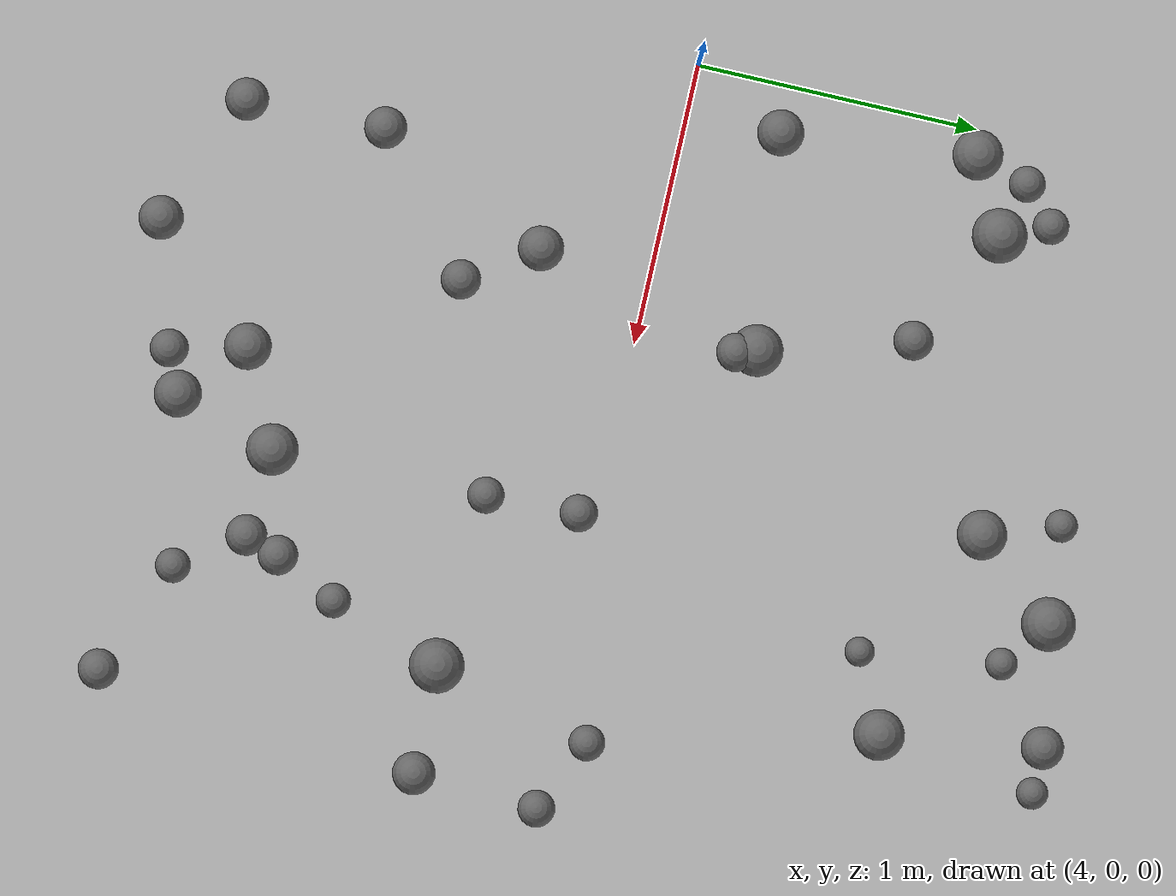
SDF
<sdf version="1.8">
 <world name="extreme_disturbance_parkour">
  <model name="ground_plane">
   <static>true</static>
   <link name="link">
    <collision name="collision">
     <geometry><plane><normal>0 0 1</normal><size>100 100</size></plane></geometry>
     <surface><friction><ode><mu>1.5</mu><mu2>1.5</mu2></ode></friction></surface>
    </collision>
    <visual name="visual">
     <geometry><plane><normal>0 0 1</normal><size>100 100</size></plane></geometry>
     <material><ambient>0.7 0.7 0.7 1</ambient><diffuse>0.7 0.7 0.7 1</diffuse></material>
    </visual>
   </link>
  </model>
  <model name="stone_3">
   <static>true</static>
   <pose>6.1135 -1.3869 0.2254 0.0000 -0.1000 0.0000</pose>
   <link name="link">
    <collision name="collision">
     <geometry><sphere><radius>0.0612</radius></sphere></geometry>
     <surface><friction><ode><mu>100.0</mu><mu2>100.0</mu2></ode></friction></surface>
    </collision>
    <visual name="visual">
     <geometry><sphere><radius>0.0612</radius></sphere></geometry>
     <material><ambient>0.3 0.3 0.3 1</ambient><diffuse>0.4 0.4 0.4 1</diffuse></material>
    </visual>
   </link>
  </model>
  <model name="stone_11">
   <static>true</static>
   <pose>4.4592 -1.0186 0.0421 0.0000 -0.1000 0.0000</pose>
   <link name="link">
    <collision name="collision">
     <geometry><sphere><radius>0.0747</radius></sphere></geometry>
     <surface><friction><ode><mu>100.0</mu><mu2>100.0</mu2></ode></friction></surface>
    </collision>
    <visual name="visual">
     <geometry><sphere><radius>0.0747</radius></sphere></geometry>
     <material><ambient>0.3 0.3 0.3 1</ambient><diffuse>0.4 0.4 0.4 1</diffuse></material>
    </visual>
   </link>
  </model>
  <model name="stone_14">
   <static>true</static>
   <pose>4.1635 0.3348 -0.0073 0.0000 -0.1000 0.0000</pose>
   <link name="link">
    <collision name="collision">
     <geometry><sphere><radius>0.0825</radius></sphere></geometry>
     <surface><friction><ode><mu>100.0</mu><mu2>100.0</mu2></ode></friction></surface>
    </collision>
    <visual name="visual">
     <geometry><sphere><radius>0.0825</radius></sphere></geometry>
     <material><ambient>0.3 0.3 0.3 1</ambient><diffuse>0.4 0.4 0.4 1</diffuse></material>
    </visual>
   </link>
  </model>
  <model name="stone_15">
   <static>true</static>
   <pose>5.6336 1.6227 0.1323 0.0000 -0.1000 0.0000</pose>
   <link name="link">
    <collision name="collision">
     <geometry><sphere><radius>0.0954</radius></sphere></geometry>
     <surface><friction><ode><mu>100.0</mu><mu2>100.0</mu2></ode></friction></surface>
    </collision>
    <visual name="visual">
     <geometry><sphere><radius>0.0954</radius></sphere></geometry>
     <material><ambient>0.3 0.3 0.3 1</ambient><diffuse>0.4 0.4 0.4 1</diffuse></material>
    </visual>
   </link>
  </model>
  <model name="stone_16">
   <static>true</static>
   <pose>5.6341 -0.3858 0.1757 0.0000 -0.1000 0.0000</pose>
   <link name="link">
    <collision name="collision">
     <geometry><sphere><radius>0.0644</radius></sphere></geometry>
     <surface><friction><ode><mu>100.0</mu><mu2>100.0</mu2></ode></friction></surface>
    </collision>
    <visual name="visual">
     <geometry><sphere><radius>0.0644</radius></sphere></geometry>
     <material><ambient>0.3 0.3 0.3 1</ambient><diffuse>0.4 0.4 0.4 1</diffuse></material>
    </visual>
   </link>
  </model>
  <model name="stone_21">
   <static>true</static>
   <pose>6.1080 -0.8187 0.2123 0.0000 -0.1000 0.0000</pose>
   <link name="link">
    <collision name="collision">
     <geometry><sphere><radius>0.0611</radius></sphere></geometry>
     <surface><friction><ode><mu>100.0</mu><mu2>100.0</mu2></ode></friction></surface>
    </collision>
    <visual name="visual">
     <geometry><sphere><radius>0.0611</radius></sphere></geometry>
     <material><ambient>0.3 0.3 0.3 1</ambient><diffuse>0.4 0.4 0.4 1</diffuse></material>
    </visual>
   </link>
  </model>
  <model name="stone_22">
   <static>true</static>
   <pose>5.8039 1.4889 0.1912 0.0000 -0.1000 0.0000</pose>
   <link name="link">
    <collision name="collision">
     <geometry><sphere><radius>0.0564</radius></sphere></geometry>
     <surface><friction><ode><mu>100.0</mu><mu2>100.0</mu2></ode></friction></surface>
    </collision>
    <visual name="visual">
     <geometry><sphere><radius>0.0564</radius></sphere></geometry>
     <material><ambient>0.3 0.3 0.3 1</ambient><diffuse>0.4 0.4 0.4 1</diffuse></material>
    </visual>
   </link>
  </model>
  <model name="stone_39">
   <static>true</static>
   <pose>4.9296 0.4222 0.0654 0.0000 -0.1000 0.0000</pose>
   <link name="link">
    <collision name="collision">
     <geometry><sphere><radius>0.0925</radius></sphere></geometry>
     <surface><friction><ode><mu>100.0</mu><mu2>100.0</mu2></ode></friction></surface>
    </collision>
    <visual name="visual">
     <geometry><sphere><radius>0.0925</radius></sphere></geometry>
     <material><ambient>0.3 0.3 0.3 1</ambient><diffuse>0.4 0.4 0.4 1</diffuse></material>
    </visual>
   </link>
  </model>
  <model name="stone_44">
   <static>true</static>
   <pose>5.8724 0.9992 0.2047 0.0000 -0.1000 0.0000</pose>
   <link name="link">
    <collision name="collision">
     <geometry><sphere><radius>0.0520</radius></sphere></geometry>
     <surface><friction><ode><mu>100.0</mu><mu2>100.0</mu2></ode></friction></surface>
    </collision>
    <visual name="visual">
     <geometry><sphere><radius>0.0520</radius></sphere></geometry>
     <material><ambient>0.3 0.3 0.3 1</ambient><diffuse>0.4 0.4 0.4 1</diffuse></material>
    </visual>
   </link>
  </model>
  <model name="stone_48">
   <static>true</static>
   <pose>5.3144 -1.3119 0.1147 0.0000 -0.1000 0.0000</pose>
   <link name="link">
    <collision name="collision">
     <geometry><sphere><radius>0.0829</radius></sphere></geometry>
     <surface><friction><ode><mu>100.0</mu><mu2>100.0</mu2></ode></friction></surface>
    </collision>
    <visual name="visual">
     <geometry><sphere><radius>0.0829</radius></sphere></geometry>
     <material><ambient>0.3 0.3 0.3 1</ambient><diffuse>0.4 0.4 0.4 1</diffuse></material>
    </visual>
   </link>
  </model>
  <model name="stone_52">
   <static>true</static>
   <pose>5.6225 -0.0572 0.1732 0.0000 -0.1000 0.0000</pose>
   <link name="link">
    <collision name="collision">
     <geometry><sphere><radius>0.0659</radius></sphere></geometry>
     <surface><friction><ode><mu>100.0</mu><mu2>100.0</mu2></ode></friction></surface>
    </collision>
    <visual name="visual">
     <geometry><sphere><radius>0.0659</radius></sphere></geometry>
     <material><ambient>0.3 0.3 0.3 1</ambient><diffuse>0.4 0.4 0.4 1</diffuse></material>
    </visual>
   </link>
  </model>
  <model name="stone_61">
   <static>true</static>
   <pose>6.3909 0.1479 0.2459 0.0000 -0.1000 0.0000</pose>
   <link name="link">
    <collision name="collision">
     <geometry><sphere><radius>0.0630</radius></sphere></geometry>
     <surface><friction><ode><mu>100.0</mu><mu2>100.0</mu2></ode></friction></surface>
    </collision>
    <visual name="visual">
     <geometry><sphere><radius>0.0630</radius></sphere></geometry>
     <material><ambient>0.3 0.3 0.3 1</ambient><diffuse>0.4 0.4 0.4 1</diffuse></material>
    </visual>
   </link>
  </model>
  <model name="stone_63">
   <static>true</static>
   <pose>5.2905 1.5885 0.1482 0.0000 -0.1000 0.0000</pose>
   <link name="link">
    <collision name="collision">
     <geometry><sphere><radius>0.0575</radius></sphere></geometry>
     <surface><friction><ode><mu>100.0</mu><mu2>100.0</mu2></ode></friction></surface>
    </collision>
    <visual name="visual">
     <geometry><sphere><radius>0.0575</radius></sphere></geometry>
     <material><ambient>0.3 0.3 0.3 1</ambient><diffuse>0.4 0.4 0.4 1</diffuse></material>
    </visual>
   </link>
  </model>
  <model name="stone_65">
   <static>true</static>
   <pose>5.6455 -1.1462 0.1496 0.0000 -0.1000 0.0000</pose>
   <link name="link">
    <collision name="collision">
     <geometry><sphere><radius>0.0912</radius></sphere></geometry>
     <surface><friction><ode><mu>100.0</mu><mu2>100.0</mu2></ode></friction></surface>
    </collision>
    <visual name="visual">
     <geometry><sphere><radius>0.0912</radius></sphere></geometry>
     <material><ambient>0.3 0.3 0.3 1</ambient><diffuse>0.4 0.4 0.4 1</diffuse></material>
    </visual>
   </link>
  </model>
  <model name="stone_66">
   <static>true</static>
   <pose>5.9985 -1.0421 0.1912 0.0000 -0.1000 0.0000</pose>
   <link name="link">
    <collision name="collision">
     <geometry><sphere><radius>0.0700</radius></sphere></geometry>
     <surface><friction><ode><mu>100.0</mu><mu2>100.0</mu2></ode></friction></surface>
    </collision>
    <visual name="visual">
     <geometry><sphere><radius>0.0700</radius></sphere></geometry>
     <material><ambient>0.3 0.3 0.3 1</ambient><diffuse>0.4 0.4 0.4 1</diffuse></material>
    </visual>
   </link>
  </model>
  <model name="stone_71">
   <static>true</static>
   <pose>6.2160 1.6886 0.2367 0.0000 -0.1000 0.0000</pose>
   <link name="link">
    <collision name="collision">
     <geometry><sphere><radius>0.0557</radius></sphere></geometry>
     <surface><friction><ode><mu>100.0</mu><mu2>100.0</mu2></ode></friction></surface>
    </collision>
    <visual name="visual">
     <geometry><sphere><radius>0.0557</radius></sphere></geometry>
     <material><ambient>0.3 0.3 0.3 1</ambient><diffuse>0.4 0.4 0.4 1</diffuse></material>
    </visual>
   </link>
  </model>
  <model name="stone_74">
   <static>true</static>
   <pose>5.5297 -1.5099 0.1488 0.0000 -0.1000 0.0000</pose>
   <link name="link">
    <collision name="collision">
     <geometry><sphere><radius>0.0831</radius></sphere></geometry>
     <surface><friction><ode><mu>100.0</mu><mu2>100.0</mu2></ode></friction></surface>
    </collision>
    <visual name="visual">
     <geometry><sphere><radius>0.0831</radius></sphere></geometry>
     <material><ambient>0.3 0.3 0.3 1</ambient><diffuse>0.4 0.4 0.4 1</diffuse></material>
    </visual>
   </link>
  </model>
  <model name="stone_79">
   <static>true</static>
   <pose>6.6496 0.0284 0.2678 0.0000 -0.1000 0.0000</pose>
   <link name="link">
    <collision name="collision">
     <geometry><sphere><radius>0.0650</radius></sphere></geometry>
     <surface><friction><ode><mu>100.0</mu><mu2>100.0</mu2></ode></friction></surface>
    </collision>
    <visual name="visual">
     <geometry><sphere><radius>0.0650</radius></sphere></geometry>
     <material><ambient>0.3 0.3 0.3 1</ambient><diffuse>0.4 0.4 0.4 1</diffuse></material>
    </visual>
   </link>
  </model>
  <model name="stone_80">
   <static>true</static>
   <pose>4.9434 -1.7091 0.0925 0.0000 -0.1000 0.0000</pose>
   <link name="link">
    <collision name="collision">
     <geometry><sphere><radius>0.0783</radius></sphere></geometry>
     <surface><friction><ode><mu>100.0</mu><mu2>100.0</mu2></ode></friction></surface>
    </collision>
    <visual name="visual">
     <geometry><sphere><radius>0.0783</radius></sphere></geometry>
     <material><ambient>0.3 0.3 0.3 1</ambient><diffuse>0.4 0.4 0.4 1</diffuse></material>
    </visual>
   </link>
  </model>
  <model name="stone_83">
   <static>true</static>
   <pose>4.3448 1.1628 0.0142 0.0000 -0.1000 0.0000</pose>
   <link name="link">
    <collision name="collision">
     <geometry><sphere><radius>0.0975</radius></sphere></geometry>
     <surface><friction><ode><mu>100.0</mu><mu2>100.0</mu2></ode></friction></surface>
    </collision>
    <visual name="visual">
     <geometry><sphere><radius>0.0975</radius></sphere></geometry>
     <material><ambient>0.3 0.3 0.3 1</ambient><diffuse>0.4 0.4 0.4 1</diffuse></material>
    </visual>
   </link>
  </model>
  <model name="stone_84">
   <static>true</static>
   <pose>4.2741 1.3298 0.0235 0.0000 -0.1000 0.0000</pose>
   <link name="link">
    <collision name="collision">
     <geometry><sphere><radius>0.0641</radius></sphere></geometry>
     <surface><friction><ode><mu>100.0</mu><mu2>100.0</mu2></ode></friction></surface>
    </collision>
    <visual name="visual">
     <geometry><sphere><radius>0.0641</radius></sphere></geometry>
     <material><ambient>0.3 0.3 0.3 1</ambient><diffuse>0.4 0.4 0.4 1</diffuse></material>
    </visual>
   </link>
  </model>
  <model name="stone_85">
   <static>true</static>
   <pose>5.3818 -1.5756 0.1358 0.0000 -0.1000 0.0000</pose>
   <link name="link">
    <collision name="collision">
     <geometry><sphere><radius>0.0672</radius></sphere></geometry>
     <surface><friction><ode><mu>100.0</mu><mu2>100.0</mu2></ode></friction></surface>
    </collision>
    <visual name="visual">
     <geometry><sphere><radius>0.0672</radius></sphere></geometry>
     <material><ambient>0.3 0.3 0.3 1</ambient><diffuse>0.4 0.4 0.4 1</diffuse></material>
    </visual>
   </link>
  </model>
  <model name="stone_86">
   <static>true</static>
   <pose>4.7732 0.9476 0.0676 0.0000 -0.1000 0.0000</pose>
   <link name="link">
    <collision name="collision">
     <geometry><sphere><radius>0.0700</radius></sphere></geometry>
     <surface><friction><ode><mu>100.0</mu><mu2>100.0</mu2></ode></friction></surface>
    </collision>
    <visual name="visual">
     <geometry><sphere><radius>0.0700</radius></sphere></geometry>
     <material><ambient>0.3 0.3 0.3 1</ambient><diffuse>0.4 0.4 0.4 1</diffuse></material>
    </visual>
   </link>
  </model>
  <model name="stone_87">
   <static>true</static>
   <pose>6.1390 1.1301 0.1939 0.0000 -0.1000 0.0000</pose>
   <link name="link">
    <collision name="collision">
     <geometry><sphere><radius>0.0893</radius></sphere></geometry>
     <surface><friction><ode><mu>100.0</mu><mu2>100.0</mu2></ode></friction></surface>
    </collision>
    <visual name="visual">
     <geometry><sphere><radius>0.0893</radius></sphere></geometry>
     <material><ambient>0.3 0.3 0.3 1</ambient><diffuse>0.4 0.4 0.4 1</diffuse></material>
    </visual>
   </link>
  </model>
  <model name="stone_91">
   <static>true</static>
   <pose>4.4708 -1.5129 0.0499 0.0000 -0.1000 0.0000</pose>
   <link name="link">
    <collision name="collision">
     <geometry><sphere><radius>0.0760</radius></sphere></geometry>
     <surface><friction><ode><mu>100.0</mu><mu2>100.0</mu2></ode></friction></surface>
    </collision>
    <visual name="visual">
     <geometry><sphere><radius>0.0760</radius></sphere></geometry>
     <material><ambient>0.3 0.3 0.3 1</ambient><diffuse>0.4 0.4 0.4 1</diffuse></material>
    </visual>
   </link>
  </model>
  <model name="stone_92">
   <static>true</static>
   <pose>6.2487 -0.4193 0.1915 0.0000 -0.1000 0.0000</pose>
   <link name="link">
    <collision name="collision">
     <geometry><sphere><radius>0.0964</radius></sphere></geometry>
     <surface><friction><ode><mu>100.0</mu><mu2>100.0</mu2></ode></friction></surface>
    </collision>
    <visual name="visual">
     <geometry><sphere><radius>0.0964</radius></sphere></geometry>
     <material><ambient>0.3 0.3 0.3 1</ambient><diffuse>0.4 0.4 0.4 1</diffuse></material>
    </visual>
   </link>
  </model>
  <model name="stone_93">
   <static>true</static>
   <pose>5.3823 1.3291 0.1157 0.0000 -0.1000 0.0000</pose>
   <link name="link">
    <collision name="collision">
     <geometry><sphere><radius>0.0876</radius></sphere></geometry>
     <surface><friction><ode><mu>100.0</mu><mu2>100.0</mu2></ode></friction></surface>
    </collision>
    <visual name="visual">
     <geometry><sphere><radius>0.0876</radius></sphere></geometry>
     <material><ambient>0.3 0.3 0.3 1</ambient><diffuse>0.4 0.4 0.4 1</diffuse></material>
    </visual>
   </link>
  </model>
  <model name="stone_94">
   <static>true</static>
   <pose>6.0562 1.6928 0.1911 0.0000 -0.1000 0.0000</pose>
   <link name="link">
    <collision name="collision">
     <geometry><sphere><radius>0.0750</radius></sphere></geometry>
     <surface><friction><ode><mu>100.0</mu><mu2>100.0</mu2></ode></friction></surface>
    </collision>
    <visual name="visual">
     <geometry><sphere><radius>0.0750</radius></sphere></geometry>
     <material><ambient>0.3 0.3 0.3 1</ambient><diffuse>0.4 0.4 0.4 1</diffuse></material>
    </visual>
   </link>
  </model>
  <model name="stone_95">
   <static>true</static>
   <pose>6.5194 -1.5559 0.2493 0.0000 -0.1000 0.0000</pose>
   <link name="link">
    <collision name="collision">
     <geometry><sphere><radius>0.0706</radius></sphere></geometry>
     <surface><friction><ode><mu>100.0</mu><mu2>100.0</mu2></ode></friction></surface>
    </collision>
    <visual name="visual">
     <geometry><sphere><radius>0.0706</radius></sphere></geometry>
     <material><ambient>0.3 0.3 0.3 1</ambient><diffuse>0.4 0.4 0.4 1</diffuse></material>
    </visual>
   </link>
  </model>
  <model name="stone_100">
   <static>true</static>
   <pose>4.7505 -0.3931 0.0701 0.0000 -0.1000 0.0000</pose>
   <link name="link">
    <collision name="collision">
     <geometry><sphere><radius>0.0803</radius></sphere></geometry>
     <surface><friction><ode><mu>100.0</mu><mu2>100.0</mu2></ode></friction></surface>
    </collision>
    <visual name="visual">
     <geometry><sphere><radius>0.0803</radius></sphere></geometry>
     <material><ambient>0.3 0.3 0.3 1</ambient><diffuse>0.4 0.4 0.4 1</diffuse></material>
    </visual>
   </link>
  </model>
  <model name="stone_101">
   <static>true</static>
   <pose>4.0848 1.0265 -0.0224 0.0000 -0.1000 0.0000</pose>
   <link name="link">
    <collision name="collision">
     <geometry><sphere><radius>0.0916</radius></sphere></geometry>
     <surface><friction><ode><mu>100.0</mu><mu2>100.0</mu2></ode></friction></surface>
    </collision>
    <visual name="visual">
     <geometry><sphere><radius>0.0916</radius></sphere></geometry>
     <material><ambient>0.3 0.3 0.3 1</ambient><diffuse>0.4 0.4 0.4 1</diffuse></material>
    </visual>
   </link>
  </model>
  <model name="stone_108">
   <static>true</static>
   <pose>4.1482 1.2159 0.0234 0.0000 -0.1000 0.0000</pose>
   <link name="link">
    <collision name="collision">
     <geometry><sphere><radius>0.0644</radius></sphere></geometry>
     <surface><friction><ode><mu>100.0</mu><mu2>100.0</mu2></ode></friction></surface>
    </collision>
    <visual name="visual">
     <geometry><sphere><radius>0.0644</radius></sphere></geometry>
     <material><ambient>0.3 0.3 0.3 1</ambient><diffuse>0.4 0.4 0.4 1</diffuse></material>
    </visual>
   </link>
  </model>
  <model name="stone_114">
   <static>true</static>
   <pose>4.9196 -0.6411 0.0853 0.0000 -0.1000 0.0000</pose>
   <link name="link">
    <collision name="collision">
     <geometry><sphere><radius>0.0700</radius></sphere></geometry>
     <surface><friction><ode><mu>100.0</mu><mu2>100.0</mu2></ode></friction></surface>
    </collision>
    <visual name="visual">
     <geometry><sphere><radius>0.0700</radius></sphere></geometry>
     <material><ambient>0.3 0.3 0.3 1</ambient><diffuse>0.4 0.4 0.4 1</diffuse></material>
    </visual>
   </link>
  </model>
  <model name="stone_115">
   <static>true</static>
   <pose>5.9548 -1.1645 0.1930 0.0000 -0.1000 0.0000</pose>
   <link name="link">
    <collision name="collision">
     <geometry><sphere><radius>0.0721</radius></sphere></geometry>
     <surface><friction><ode><mu>100.0</mu><mu2>100.0</mu2></ode></friction></surface>
    </collision>
    <visual name="visual">
     <geometry><sphere><radius>0.0721</radius></sphere></geometry>
     <material><ambient>0.3 0.3 0.3 1</ambient><diffuse>0.4 0.4 0.4 1</diffuse></material>
    </visual>
   </link>
  </model>
  <model name="stone_117">
   <static>true</static>
   <pose>4.9530 0.3519 0.0926 0.0000 -0.1000 0.0000</pose>
   <link name="link">
    <collision name="collision">
     <geometry><sphere><radius>0.0688</radius></sphere></geometry>
     <surface><friction><ode><mu>100.0</mu><mu2>100.0</mu2></ode></friction></surface>
    </collision>
    <visual name="visual">
     <geometry><sphere><radius>0.0688</radius></sphere></geometry>
     <material><ambient>0.3 0.3 0.3 1</ambient><diffuse>0.4 0.4 0.4 1</diffuse></material>
    </visual>
   </link>
  </model>
  <model name="stone_118">
   <static>true</static>
   <pose>6.6258 -0.4115 0.2650 0.0000 -0.1000 0.0000</pose>
   <link name="link">
    <collision name="collision">
     <geometry><sphere><radius>0.0749</radius></sphere></geometry>
     <surface><friction><ode><mu>100.0</mu><mu2>100.0</mu2></ode></friction></surface>
    </collision>
    <visual name="visual">
     <geometry><sphere><radius>0.0749</radius></sphere></geometry>
     <material><ambient>0.3 0.3 0.3 1</ambient><diffuse>0.4 0.4 0.4 1</diffuse></material>
    </visual>
   </link>
  </model>
 </world>
</sdf>
